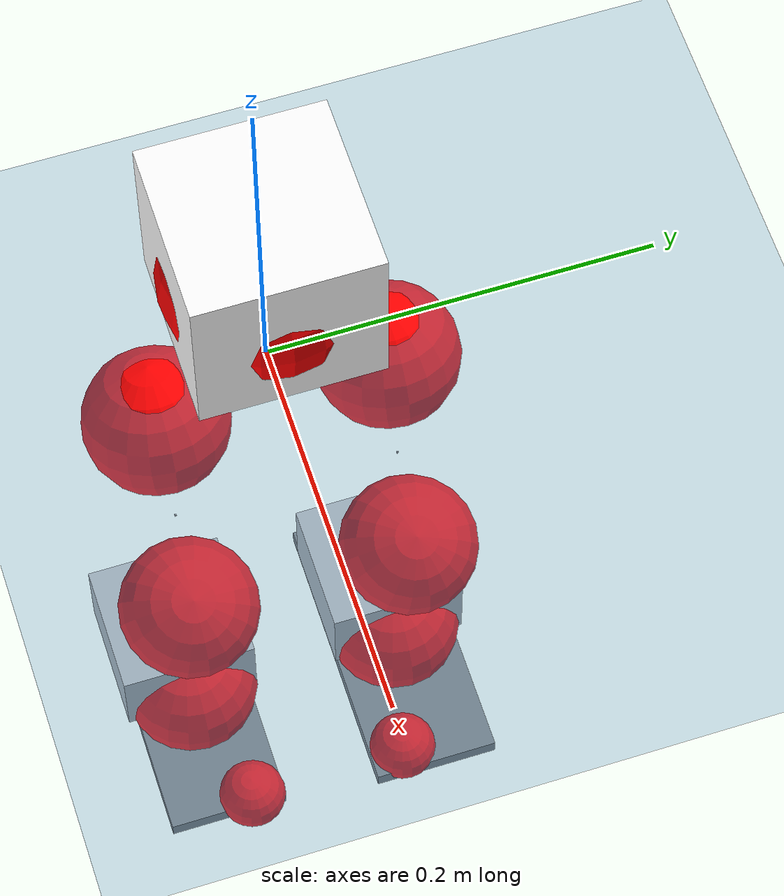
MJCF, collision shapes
<mujoco model="pi_12dof_release_v1">
  <compiler angle="radian" assetdir="assets" balanceinertia="true" inertiafromgeom="false"/>

  <option timestep="0.005" density="1.2" viscosity="2e-05"/>

  <size nkey="1"/>

  <visual>
    <quality shadowsize="8192"/>
    <map shadowclip="0.5"/>
  </visual>

  <default>
    <default class="/">
      <joint armature="0.01" damping="0.01" frictionloss="0.01"/>
      <geom contype="0" conaffinity="0" group="1" solref="-1000 -80"/>
      <site size="0.01 0.005 0.005" group="5"/>
      <general forcelimited="true" biastype="affine" gainprm="20" biasprm="0 -20 -0.5"/>
      <default class="foot">
        <geom size="0.0845 0.036 0.005" type="box" condim="6" group="4" priority="1" friction="0.9 0.2 0.2" solimp="0.015 1 0.005"/>
      </default>
      <default class="reward_collision_sphere">
        <geom group="5" rgba="1 0 0 1"/>
      </default>
    </default>
  </default>

  <asset>
    <texture type="skybox" colorspace="auto" name="//unnamed_texture_0" builtin="gradient" rgb1="0.95 0.95 0.95" rgb2="0.95 0.95 0.95" width="100" height="600"/>
    <texture type="2d" colorspace="auto" name="texplane" builtin="checker" rgb1="0.345 0.575 0.748" rgb2="0.345 0.575 0.748" markrgb="1 1 1" width="512" height="512"/>
    <material name="MatPlane" class="/" texture="texplane" texuniform="true" texrepeat="2 2" specular="0.9"/>
    <mesh name="baselink_1" class="/" file="baselink_1.STL"/>
    <mesh name="r_hip_pitch_link" class="/" file="r_hip_pitch_link.STL"/>
    <mesh name="r_hip_roll_link" class="/" file="r_hip_roll_link.STL"/>
    <mesh name="r_thigh_link" class="/" file="r_thigh_link.STL"/>
    <mesh name="r_calf_link" class="/" file="r_calf_link.STL"/>
    <mesh name="r_ankle_pitch_link" class="/" file="r_ankle_pitch_link.STL"/>
    <mesh name="r_ankle_roll_link" class="/" file="r_ankle_roll_link.STL"/>
    <mesh name="l_hip_pitch_link" class="/" file="l_hip_pitch_link.STL"/>
    <mesh name="l_hip_roll_link" class="/" file="l_hip_roll_link.STL"/>
    <mesh name="l_thigh_link" class="/" file="l_thigh_link.STL"/>
    <mesh name="l_calf_link" class="/" file="l_calf_link.STL"/>
    <mesh name="l_ankle_pitch_link" class="/" file="l_ankle_pitch_link.STL"/>
    <mesh name="l_ankle_roll_link" class="/" file="l_ankle_roll_link.STL"/>
  </asset>

  <worldbody>
    <geom name="floor" class="/" size="100 100 0.125" type="plane" group="0" material="MatPlane"/>
    <light name="toplight_shadow" class="/" pos="0 0 5" dir="0.0990148 0.0990148 -0.990148" type="directional" ambient="0.04 0.04 0.04" diffuse="0.55 0.55 0.55" specular="0.12 0.12 0.12"/>
    <light name="toplight_fill" class="/" pos="0 0 5" dir="0.0990148 0.0990148 -0.990148" type="directional" castshadow="false" ambient="0.04 0.04 0.04" diffuse="0.3 0.3 0.3" specular="0.08 0.08 0.08"/>
    <body name="trunk" pos="-0.000337565 0.000868437 8.90237e-05" quat="1 0.000130194 0.000144425 -0.00020659">
      <inertial pos="0.00169974 -0.000739977 0.0410911" quat="0.695423 0.009605 0.00929928 0.718476" mass="1.7718" diaginertia="0.0102277 0.0024735 0.00463355"/>
      <joint name="//unnamed_joint_0" type="free"/>
      <geom name="//unnamed_geom_1" class="/" type="mesh" density="0" rgba="1 1 1 1" mesh="baselink_1"/>
      <geom name="//unnamed_geom_2" class="/" size="0.0467765 0.0467765 0.0467765" pos="0 0 0.0818271" type="box" rgba="1 1 1 1"/>
      <geom name="//unnamed_geom_3" class="reward_collision_sphere" size="0.0514542" pos="0 0 0.0715987"/>
      <site name="imu" class="/" pos="0.000540913 0.000294404 -0.00225717" size="0.00935531"/>
      <camera name="track" class="/" pos="0 -1.54633 0" quat="0.707107 0.707107 0 0" mode="trackcom"/>
      <camera name="ego_camera" class="/" pos="0.0757941 0 0.184111" quat="-0.5 -0.5 0.5 0.5"/>
      <body name="r_hip_pitch_link" pos="0.000648442 -0.0165232 -0.0343367" quat="0.992195 -1.06372e-05 -0.124694 2.48883e-05">
        <inertial pos="0.000415629 -0.0425616 0.000530947" quat="-0.0196358 0.705534 -0.0276836 0.707863" mass="0.301983" diaginertia="0.000113739 2.69677e-05 9.18145e-05"/>
        <joint name="r_hip_pitch_joint" class="/" pos="0 0 0" axis="-0.00472561 -0.999979 0.00434884" range="-1.75034 1.25556" armature="0.0093584" damping="0.0127622" frictionloss="0.00895837"/>
        <geom name="//unnamed_geom_4" class="/" type="mesh" density="0" rgba="0.75294 0.75294 0.75294 1" mesh="r_hip_pitch_link"/>
        <geom name="//unnamed_geom_5" class="/" size="0.000467765 0.000467765 0.000467765" type="box" rgba="0.75294 0.75294 0.75294 1"/>
        <body name="r_hip_roll_link" pos="0.000540529 -0.0422611 -9.32108e-05" quat="1 -1.15346e-05 1.48375e-05 -5.15065e-06">
          <inertial pos="-0.000556257 -0.000445505 -0.0633611" quat="0.706924 -0.079303 -0.0828661 0.697927" mass="0.315833" diaginertia="0.000353137 7.72079e-05 0.000143732"/>
          <joint name="r_hip_roll_joint" class="/" pos="0 0 0" axis="-1 0.000307172 -0.00011781" range="-0.110277 0.486174" armature="0.00936394" damping="0.00871139" frictionloss="0.00936736"/>
          <geom name="//unnamed_geom_6" class="/" type="mesh" density="0" rgba="0.75294 0.75294 0.75294 1" mesh="r_hip_roll_link"/>
          <geom name="//unnamed_geom_7" class="/" size="0.000467765 0.000467765 0.000467765" type="box" rgba="0.75294 0.75294 0.75294 1"/>
          <geom name="//unnamed_geom_8" class="reward_collision_sphere" size="0.0374212"/>
          <body name="r_thigh_link" pos="-0.000225333 0.00104663 -0.0709289" quat="1 -0.000104104 -0.000426653 0.000248096">
            <inertial pos="-0.000361476 0.000497467 -0.0479169" quat="0.736717 0.676201 0.000438925 0.000507192" mass="0.0927061" diaginertia="0.000131205 2.59251e-05 6.55247e-05"/>
            <joint name="r_thigh_joint" class="/" pos="0 0 0" axis="0.00499481 -0.0018606 -0.999986" range="-0.30199 0.575152" armature="0.00946213" damping="0.00451794" frictionloss="0.00947276"/>
            <geom name="//unnamed_geom_9" class="/" type="mesh" density="0" rgba="0.75294 0.75294 0.75294 1" mesh="r_thigh_link"/>
            <geom name="//unnamed_geom_10" class="/" size="0.000467765 0.000467765 0.000467765" type="box" rgba="0.75294 0.75294 0.75294 1"/>
            <body name="r_calf_link" pos="-9.96983e-05 -0.00136329 -0.0717764" quat="0.947687 1.46763e-05 0.319202 -0.000133101">
              <inertial pos="-0.00107214 -0.000346506 -0.0714306" quat="0.999987 -0.0030079 -0.000378045 0.00420812" mass="0.66783" diaginertia="0.00366352 0.000950627 0.000195437"/>
              <joint name="r_calf_joint" class="/" pos="0 0 0" axis="-0.00113179 -0.999999 0.000404001" range="-1.64713 0.653634" armature="0.00974549" damping="0.00100835" frictionloss="0.00968112"/>
              <geom name="//unnamed_geom_11" class="/" type="mesh" density="0" rgba="0.75294 0.75294 0.75294 1" mesh="r_calf_link"/>
              <geom name="//unnamed_geom_12" class="/" size="0.000467765 0.000467765 0.000467765" type="box" rgba="0.75294 0.75294 0.75294 1"/>
              <geom name="//unnamed_geom_13" class="reward_collision_sphere" size="0.0374212"/>
              <body name="r_ankle_pitch_link" pos="0.000986356 -0.000173033 -0.143667" quat="0.980059 -0.000173836 -0.198707 -0.000103335">
                <inertial pos="0.00571619 0.00203803 -0.000630536" quat="0.00225834 0.70706 -0.00241234 0.707146" mass="0.142617" diaginertia="0.000324104 6.14795e-05 0.000135016"/>
                <joint name="r_ankle_pitch_joint" class="/" pos="0 0 0" axis="-0.00384172 -0.999989 -0.00273901" range="-1.28637 0.487583" armature="0.00919536" damping="0.00780957" frictionloss="0.00977067"/>
                <geom name="//unnamed_geom_14" class="/" type="mesh" density="0" rgba="0.75294 0.75294 0.75294 1" mesh="r_ankle_pitch_link"/>
                <geom name="//unnamed_geom_15" class="/" size="0.0364857 0.0374212 0.0233883" type="box" rgba="0.75294 0.75294 0.75294 1"/>
                <body name="r_ankle_roll_link" pos="0.076221 0.00201311 -0.000324036" quat="1 -5.95875e-07 7.01759e-06 -3.8168e-07">
                  <inertial pos="-0.0252137 2.31845e-06 -0.0153316" quat="0.559824 0.430771 0.433958 0.559208" mass="0.424438" diaginertia="0.00117979 0.000286073 0.000314612"/>
                  <joint name="r_ankle_roll_joint" class="/" pos="0 0 0" axis="-0.999978 -0.00508468 0.00418223" range="-0.144843 0.160683" armature="0.00957118" damping="0.00878245" frictionloss="0.00945283"/>
                  <geom name="//unnamed_geom_16" class="/" type="mesh" density="0" rgba="0.75294 0.75294 0.75294 1" mesh="r_ankle_roll_link"/>
                  <geom name="//unnamed_geom_17" class="/" type="mesh" rgba="0.75294 0.75294 0.75294 1" mesh="r_ankle_roll_link"/>
                  <geom name="right_foot" class="foot" size="0.0730279 0.0329324 0.00470546" pos="-0.05154 0 -0.0450049"/>
                  <geom name="//unnamed_geom_19" class="reward_collision_sphere" size="0.0374212" pos="-0.0505294 0 -0.0204568"/>
                  <geom name="//unnamed_geom_20" class="reward_collision_sphere" size="0.0187106" pos="0.0151588 0.0154633 -0.0409136"/>
                  <geom name="//unnamed_geom_21" class="reward_collision_sphere" size="0.0187106" pos="-0.121271 0.0154633 -0.0409136"/>
                  <site name="right_foot" class="foot" pos="-0.05154 0 -0.0450049" size="0.00935531"/>
                </body>
              </body>
            </body>
          </body>
        </body>
      </body>
      <body name="l_hip_pitch_link" pos="-0.000653673 0.0180348 -0.0339943" quat="0.992206 0.000375916 -0.124608 -0.000475454">
        <inertial pos="0.00121461 0.0411078 -0.000203007" quat="-0.0385435 0.70551 0.0296496 0.707029" mass="0.320312" diaginertia="0.000134891 2.86831e-05 0.000111836"/>
        <joint name="l_hip_pitch_joint" class="/" pos="0 0 0" axis="0.000332038 1 0.000254938" stiffness="0.00211778" range="-1.2644 1.75173" armature="0.00901935" damping="0.00724639" frictionloss="0.00923755"/>
        <geom name="//unnamed_geom_22" class="/" type="mesh" density="0" rgba="0.75294 0.75294 0.75294 1" mesh="l_hip_pitch_link"/>
        <geom name="//unnamed_geom_23" class="/" size="0.000467765 0.000467765 0.000467765" type="box" rgba="0.75294 0.75294 0.75294 1"/>
        <body name="l_hip_roll_link" pos="0.000486261 0.0428764 -0.000489278" quat="1 -3.18705e-05 1.90253e-05 4.27881e-05">
          <inertial pos="-0.00149004 3.94367e-05 -0.0631076" quat="0.698954 -0.075278 -0.0768489 0.707029" mass="0.319697" diaginertia="0.000352852 7.72922e-05 0.000144175"/>
          <joint name="l_hip_roll_joint" class="/" pos="0 0 0" axis="-0.999998 -0.00211883 -0.000560662" range="-0.506796 0.119611" armature="0.00897426" damping="0" frictionloss="0.00907681"/>
          <geom name="//unnamed_geom_24" class="/" type="mesh" density="0" rgba="0.75294 0.75294 0.75294 1" mesh="l_hip_roll_link"/>
          <geom name="//unnamed_geom_25" class="/" size="0.000467765 0.000467765 0.000467765" type="box" rgba="0.75294 0.75294 0.75294 1"/>
          <geom name="//unnamed_geom_26" class="reward_collision_sphere" size="0.0374212"/>
          <body name="l_thigh_link" pos="0.000513141 -0.000308853 -0.0714949" quat="1 0.000136346 1.4741e-05 1.84861e-06">
            <inertial pos="0.000375083 -0.0014745 -0.0496635" quat="0.675003 0.737815 8.61915e-05 2.96483e-06" mass="0.092007" diaginertia="0.000131922 2.61412e-05 6.50096e-05"/>
            <joint name="l_thigh_joint" class="/" pos="0 0 0" axis="0.000170615 -0.00169306 -0.999999" stiffness="0.000252701" range="-0.59985 0.29273" armature="0.00974449" damping="0.00356319" frictionloss="0.00933712"/>
            <geom name="//unnamed_geom_27" class="/" type="mesh" density="0" rgba="0.75294 0.75294 0.75294 1" mesh="l_thigh_link"/>
            <geom name="//unnamed_geom_28" class="/" size="0.000467765 0.000467765 0.000467765" type="box" rgba="0.75294 0.75294 0.75294 1"/>
            <body name="l_calf_link" pos="-0.000430428 0.000599703 -0.0724648" quat="0.947713 -0.000308214 0.319123 -0.000124423">
              <inertial pos="0.000265322 0.00152494 -0.0717446" quat="0.999984 0.00324323 -0.000298358 0.00468336" mass="0.664882" diaginertia="0.00366349 0.000953604 0.000195243"/>
              <joint name="l_calf_joint" class="/" pos="0 0 0" axis="-0.00110793 0.999999 0.00103782" stiffness="0.000366695" range="-0.657149 1.65392" armature="0.009141" damping="0.00866087" frictionloss="0.00954871"/>
              <geom name="//unnamed_geom_29" class="/" type="mesh" density="0" rgba="0.75294 0.75294 0.75294 1" mesh="l_calf_link"/>
              <geom name="//unnamed_geom_30" class="/" size="0.000467765 0.000467765 0.000467765" type="box" rgba="0.75294 0.75294 0.75294 1"/>
              <geom name="//unnamed_geom_31" class="reward_collision_sphere" size="0.0374212"/>
              <body name="l_ankle_pitch_link" pos="0.000149557 0.00072407 -0.142508" quat="0.980055 0.000133471 -0.198728 1.4135e-05">
                <inertial pos="0.00483804 -7.64439e-05 7.1466e-05" quat="-0.00217376 0.706608 0.00208865 0.707599" mass="0.144994" diaginertia="0.000325154 6.13328e-05 0.000134188"/>
                <joint name="l_ankle_pitch_joint" class="/" pos="0 0 0" axis="0.000669508 0.999999 0.00131122" range="-0.513785 1.30369" armature="0.00936547" damping="0.00768947" frictionloss="0.00922521"/>
                <geom name="//unnamed_geom_32" class="/" type="mesh" density="0" rgba="0.75294 0.75294 0.75294 1" mesh="l_ankle_pitch_link"/>
                <geom name="//unnamed_geom_33" class="/" size="0.0364857 0.0374212 0.0233883" type="box" rgba="0.75294 0.75294 0.75294 1"/>
                <body name="l_ankle_roll_link" pos="0.0754938 0.000346518 0.000321432" quat="1 1.57414e-05 3.62543e-05 -0.000165281">
                  <inertial pos="-0.0241873 -0.000199648 -0.0155703" quat="0.559588 0.430864 0.434406 0.559025" mass="0.425727" diaginertia="0.00117442 0.000286177 0.000311717"/>
                  <joint name="l_ankle_roll_joint" class="/" pos="0 0 0" axis="-0.999997 0.00161314 -0.00157376" range="-0.160819 0.153244" armature="0.0092182" damping="0.00390208" frictionloss="0.00958392"/>
                  <geom name="//unnamed_geom_34" class="/" type="mesh" density="0" rgba="0.75294 0.75294 0.75294 1" mesh="l_ankle_roll_link"/>
                  <geom name="//unnamed_geom_35" class="/" type="mesh" rgba="0.75294 0.75294 0.75294 1" mesh="l_ankle_roll_link"/>
                  <geom name="left_foot" class="foot" size="0.0813894 0.0345542 0.0046504" pos="-0.05154 0 -0.0450049"/>
                  <geom name="//unnamed_geom_37" class="reward_collision_sphere" size="0.0374212" pos="-0.0505294 0 -0.0204568"/>
                  <geom name="//unnamed_geom_38" class="reward_collision_sphere" size="0.0187106" pos="0.0151588 -0.0154633 -0.0409136"/>
                  <geom name="//unnamed_geom_39" class="reward_collision_sphere" size="0.0187106" pos="-0.121271 -0.0154633 -0.0409136"/>
                  <site name="left_foot" class="foot" pos="-0.05154 0 -0.0450049" size="0.00935531"/>
                </body>
              </body>
            </body>
          </body>
        </body>
      </body>
    </body>
  </worldbody>

  <contact>
    <pair class="/" geom1="floor" geom2="right_foot" name="//unnamed_contact_1"/>
    <pair class="/" geom1="floor" geom2="left_foot" name="//unnamed_contact_0"/>
  </contact>

  <actuator>
    <general name="r_hip_pitch_joint" class="/" joint="r_hip_pitch_joint" forcerange="-19.326 19.326" gainprm="18.8373" biasprm="0 -18.8373 -0.476087"/>
    <general name="r_hip_roll_joint" class="/" joint="r_hip_roll_joint" forcerange="-19.5922 19.5922" gainprm="18.8373" biasprm="0 -18.8373 -0.476087"/>
    <general name="r_thigh_joint" class="/" joint="r_thigh_joint" forcerange="-19.7505 19.7505" gainprm="18.8373" biasprm="0 -18.8373 -0.476087"/>
    <general name="r_calf_joint" class="/" joint="r_calf_joint" forcerange="-19.3715 19.3715" gainprm="18.8373" biasprm="0 -18.8373 -0.476087"/>
    <general name="r_ankle_pitch_joint" class="/" joint="r_ankle_pitch_joint" forcerange="-19.9331 19.9331" gainprm="18.8373" biasprm="0 -18.8373 -0.476087"/>
    <general name="r_ankle_roll_joint" class="/" joint="r_ankle_roll_joint" forcerange="-19.3304 19.3304" gainprm="18.8373" biasprm="0 -18.8373 -0.476087"/>
    <general name="l_hip_pitch_joint" class="/" joint="l_hip_pitch_joint" forcerange="-19.7342 19.7342" gainprm="18.8373" biasprm="0 -18.8373 -0.476087"/>
    <general name="l_hip_roll_joint" class="/" joint="l_hip_roll_joint" forcerange="-20.1427 20.1427" gainprm="18.8373" biasprm="0 -18.8373 -0.476087"/>
    <general name="l_thigh_joint" class="/" joint="l_thigh_joint" forcerange="-19.6149 19.6149" gainprm="18.8373" biasprm="0 -18.8373 -0.476087"/>
    <general name="l_calf_joint" class="/" joint="l_calf_joint" forcerange="-20.176 20.176" gainprm="18.8373" biasprm="0 -18.8373 -0.476087"/>
    <general name="l_ankle_pitch_joint" class="/" joint="l_ankle_pitch_joint" forcerange="-19.6535 19.6535" gainprm="18.8373" biasprm="0 -18.8373 -0.476087"/>
    <general name="l_ankle_roll_joint" class="/" joint="l_ankle_roll_joint" forcerange="-20.1998 20.1998" gainprm="18.8373" biasprm="0 -18.8373 -0.476087"/>
  </actuator>

  <sensor>
    <gyro site="imu" name="imu_angular_velocity"/>
    <velocimeter site="imu" name="imu_linear_velocity"/>
    <framelinvel objtype="site" objname="left_foot" name="left_foot_global_linear_velocity"/>
    <framelinvel objtype="site" objname="right_foot" name="right_foot_global_linear_velocity"/>
  </sensor>

  <keyframe>
    <key name="home" qpos="0 0 0.291 1 0 0 0 0.4 0 0 -0.8 0.4 0 -0.4 0 0 0.8 -0.4 0"/>
  </keyframe>
</mujoco>
